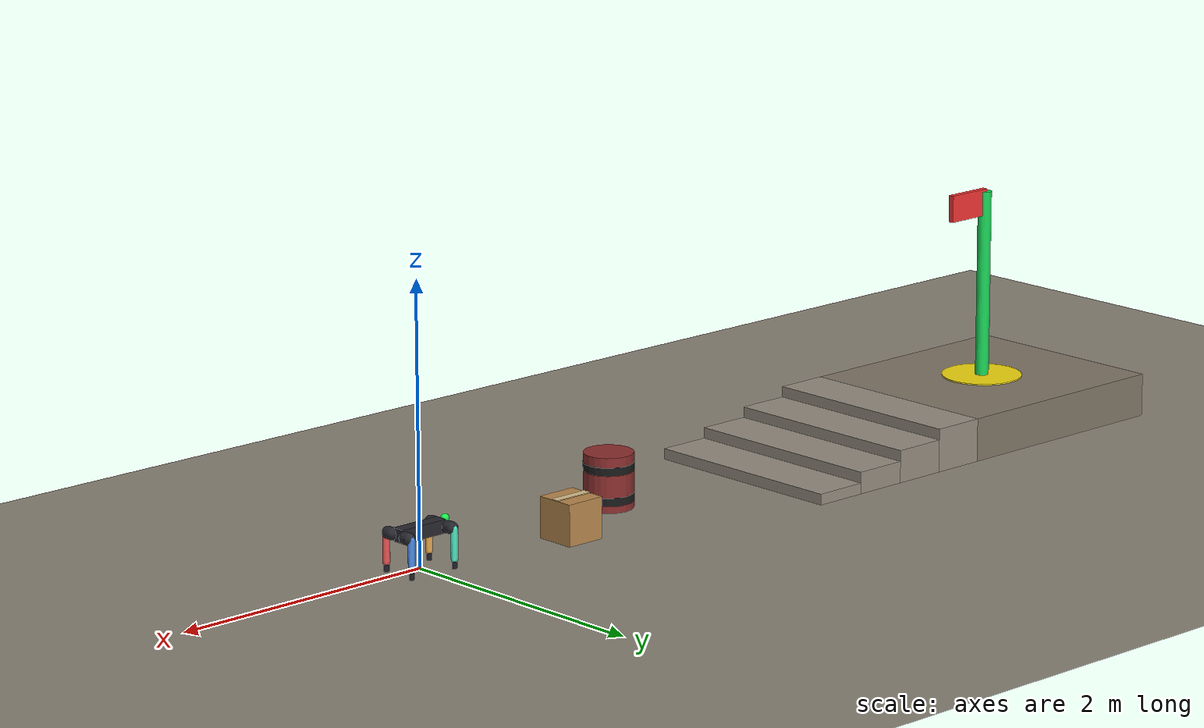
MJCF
<mujoco model="go1_stairs_navigation">

  <compiler angle="radian" autolimits="true"/>
  <option gravity="0 0 -9.81" timestep="0.002" iterations="50" tolerance="1e-10"
          cone="elliptic" impratio="100"/>

  <default>
    <joint damping="2.0" frictionloss="0.2" armature="0.01"/>
    <geom contype="1" conaffinity="1" condim="3"
          friction="0.6 0.02 0.001" solref="0.005 1" solimp="0.98 0.99 0.001"/>
    <position kp="300" ctrlrange="-3.14 3.14" forcelimited="true" forcerange="-33.5 33.5"/>
    <default class="hip_joint">
      <joint damping="1.0" frictionloss="0.2" armature="0.01"/>
    </default>
    <default class="foot">
      <geom condim="6" friction="0.8 0.02 0.01"
            solimp="0.015 1 0.023" solref="0.005 1"/>
    </default>
  </default>

  <asset>
    <texture name="sky" type="skybox" builtin="gradient"
             rgb1="0.45 0.60 0.85" rgb2="0.75 0.85 0.95"
             width="512" height="512" mark="random" markrgb="1 1 1"
             random="0.01"/>
    <texture name="ground_tex" type="2d" builtin="flat"
             rgb1="0.72 0.70 0.66" rgb2="0.68 0.66 0.62"
             width="512" height="512"/>
    <material name="ground_mat" texture="ground_tex" texrepeat="12 12"
              texuniform="true" reflectance="0.02" rgba="0.75 0.73 0.70 1"/>

    <material name="cardboard"  rgba="0.72 0.53 0.30 1" reflectance="0.02"/>
    <material name="barrel"     rgba="0.55 0.18 0.18 1" reflectance="0.20"/>
    <material name="step_mat"   rgba="0.58 0.55 0.50 1" reflectance="0.05"/>
    <material name="deck_mat"   rgba="0.50 0.46 0.40 1" reflectance="0.04"/>
    <material name="goal_pad"   rgba="0.95 0.85 0.05 1" reflectance="0.30"
              emission="0.25"/>
    <material name="beacon"     rgba="0.10 0.85 0.35 1" reflectance="0.10"
              emission="0.20"/>
    <material name="flag"       rgba="0.95 0.20 0.20 1" reflectance="0.10"/>
    <material name="body_mat"   rgba="0.15 0.15 0.18 1" reflectance="0.05"/>
    <material name="leg_mat"    rgba="0.12 0.12 0.15 1" reflectance="0.03"/>
  </asset>

  <worldbody>
    <!-- Lighting -->
    <light name="sun" pos="3 3 12" dir="-0.3 -0.2 -1" diffuse="1.2 1.15 1.0"
           specular="0.5 0.5 0.4" castshadow="true"/>
    <light name="ambient" pos="0 0 10" dir="0 0 -1" diffuse="0.35 0.38 0.45"
           specular="0 0 0" castshadow="false"/>
    <light name="fill"   pos="-5 -3 6" dir="0.3 0.2 -1" diffuse="0.25 0.25 0.30"
           castshadow="false"/>

    <!-- Ground plane -->
    <geom name="floor" type="plane" size="20 20 0.1" material="ground_mat"
          condim="6" friction="0.8 0.02 0.01"/>

    <!-- ══ Obstacle 1 — cardboard box, slightly left of centerline ══ -->
    <body name="obstacle_box" pos="-1.2 0.18 0.15">
      <geom type="box" size="0.15 0.15 0.15" material="cardboard"
            mass="5.0" friction="0.7 0.02 0.001"/>
      <geom type="box" size="0.151 0.03 0.003" pos="0 0 0.153"
            rgba="0.85 0.75 0.55 1" contype="0" conaffinity="0"/>
    </body>

    <!-- ══ Obstacle 2 — barrel, slightly right of centerline ══ -->
    <body name="obstacle_barrel" pos="-1.9 -0.20 0.20">
      <geom type="cylinder" size="0.18 0.20" material="barrel"
            mass="12.0" friction="0.7 0.02 0.001"/>
      <geom type="cylinder" size="0.181 0.03" pos="0 0 0.10"
            rgba="0.10 0.10 0.10 1" contype="0" conaffinity="0"/>
      <geom type="cylinder" size="0.181 0.03" pos="0 0 -0.12"
            rgba="0.10 0.10 0.10 1" contype="0" conaffinity="0"/>
    </body>

    <!-- ══ Stairs — 4 steps, 0.40m deep × 0.08m rise ════════════════ -->
    <!-- Each step is a static box. Cumulative rise: 0.08, 0.16, 0.24, 0.32 -->
    <body name="step_1" pos="-3.2 0 0.04">
      <geom type="box" size="0.20 0.80 0.04" material="step_mat"
            friction="0.9 0.02 0.001"/>
    </body>
    <body name="step_2" pos="-3.6 0 0.08">
      <geom type="box" size="0.20 0.80 0.08" material="step_mat"
            friction="0.9 0.02 0.001"/>
    </body>
    <body name="step_3" pos="-4.0 0 0.12">
      <geom type="box" size="0.20 0.80 0.12" material="step_mat"
            friction="0.9 0.02 0.001"/>
    </body>
    <body name="step_4" pos="-4.4 0 0.16">
      <geom type="box" size="0.20 0.80 0.16" material="step_mat"
            friction="0.9 0.02 0.001"/>
    </body>

    <!-- ══ Top deck — extends from -4.6 to -6.4, 32cm above ground ══ -->
    <body name="top_deck" pos="-5.5 0 0.16">
      <geom type="box" size="0.90 0.80 0.16" material="deck_mat"
            friction="0.9 0.02 0.001"/>
    </body>

    <!-- ══ Goal beacon at the top — pad + tall column + flag ════════ -->
    <!-- The yellow pad sits flush on the deck so the robot's camera can see it -->
    <geom name="goal_pad_disc" type="cylinder" size="0.30 0.005"
          pos="-5.5 0 0.328" material="goal_pad"
          contype="0" conaffinity="0"/>
    <!-- 1.4m tall green column rising from the deck — strong visual landmark -->
    <geom name="goal_beacon" type="cylinder" size="0.05 0.70"
          pos="-5.5 0 1.03" material="beacon"
          contype="0" conaffinity="0"/>
    <!-- Red flag on top of the beacon -->
    <geom name="goal_flag" type="box" size="0.18 0.02 0.10"
          pos="-5.32 0 1.65" material="flag"
          contype="0" conaffinity="0"/>

    <!-- ══ Robot ════════════════════════════════════════════════════ -->
    <body name="trunk" pos="0 0 0.27">
      <freejoint name="root"/>
      <geom name="trunk" type="box" size="0.1881 0.0475 0.048"
            mass="9.041" material="body_mat"/>
      <site name="imu" pos="0 0 0" size="0.005"/>
      <geom name="head_marker" type="sphere" size="0.03" pos="-0.22 0 0.04"
            rgba="0.1 0.95 0.3 1" contype="0" conaffinity="0" mass="0.001"/>

      <!-- Forward-facing camera (head, looks toward -x) — used by VLA -->
      <camera name="forward" pos="-0.22 0 0.06" euler="1.5708 -1.5708 0"
              fovy="70"/>

      <!-- FL leg -->
      <body name="FL_hip" pos="0.1881 0.0472 0">
        <joint name="FL_hip_joint" type="hinge" axis="1 0 0"
               range="-0.863 0.863" class="hip_joint"/>
        <geom type="capsule" size="0.044 0.020" pos="0 0.040 0"
              euler="1.5708 0 0" mass="0.591" material="body_mat"/>
        <body name="FL_thigh" pos="0 0.0838 0">
          <joint name="FL_thigh_joint" type="hinge" axis="0 -1 0"
                 range="-0.686 4.501"/>
          <geom type="capsule" size="0.025" fromto="0 0 0 0 0 -0.213"
                mass="0.921" material="leg_mat" rgba="0.30 0.55 0.90 1"/>
          <body name="FL_calf" pos="0 0 -0.213">
            <joint name="FL_calf_joint" type="hinge" axis="0 -1 0"
                   range="-2.818 -0.888"/>
            <geom type="capsule" size="0.019" fromto="0 0 0 0 0 -0.213"
                  mass="0.135" material="leg_mat"/>
            <body name="FL_foot" pos="0 0 -0.213">
              <geom name="FL_foot_geom" type="sphere" size="0.0165"
                    mass="0.06" rgba="0.30 0.55 0.90 1" class="foot"/>
            </body>
          </body>
        </body>
      </body>

      <!-- FR leg -->
      <body name="FR_hip" pos="0.1881 -0.0472 0">
        <joint name="FR_hip_joint" type="hinge" axis="-1 0 0"
               range="-0.863 0.863" class="hip_joint"/>
        <geom type="capsule" size="0.044 0.020" pos="0 -0.040 0"
              euler="1.5708 0 0" mass="0.591" material="body_mat"/>
        <body name="FR_thigh" pos="0 -0.0838 0">
          <joint name="FR_thigh_joint" type="hinge" axis="0 -1 0"
                 range="-0.686 4.501"/>
          <geom type="capsule" size="0.025" fromto="0 0 0 0 0 -0.213"
                mass="0.921" material="leg_mat" rgba="0.90 0.33 0.33 1"/>
          <body name="FR_calf" pos="0 0 -0.213">
            <joint name="FR_calf_joint" type="hinge" axis="0 -1 0"
                   range="-2.818 -0.888"/>
            <geom type="capsule" size="0.019" fromto="0 0 0 0 0 -0.213"
                  mass="0.135" material="leg_mat"/>
            <body name="FR_foot" pos="0 0 -0.213">
              <geom name="FR_foot_geom" type="sphere" size="0.0165"
                    mass="0.06" rgba="0.90 0.33 0.33 1" class="foot"/>
            </body>
          </body>
        </body>
      </body>

      <!-- RL leg -->
      <body name="RL_hip" pos="-0.1881 0.0472 0">
        <joint name="RL_hip_joint" type="hinge" axis="1 0 0"
               range="-0.863 0.863" class="hip_joint"/>
        <geom type="capsule" size="0.044 0.020" pos="0 0.040 0"
              euler="1.5708 0 0" mass="0.591" material="body_mat"/>
        <body name="RL_thigh" pos="0 0.0838 0">
          <joint name="RL_thigh_joint" type="hinge" axis="0 -1 0"
                 range="-0.686 4.501"/>
          <geom type="capsule" size="0.025" fromto="0 0 0 0 0 -0.213"
                mass="0.921" material="leg_mat" rgba="0.30 0.90 0.75 1"/>
          <body name="RL_calf" pos="0 0 -0.213">
            <joint name="RL_calf_joint" type="hinge" axis="0 -1 0"
                   range="-2.818 -0.888"/>
            <geom type="capsule" size="0.019" fromto="0 0 0 0 0 -0.213"
                  mass="0.135" material="leg_mat"/>
            <body name="RL_foot" pos="0 0 -0.213">
              <geom name="RL_foot_geom" type="sphere" size="0.0165"
                    mass="0.06" rgba="0.30 0.90 0.75 1" class="foot"/>
            </body>
          </body>
        </body>
      </body>

      <!-- RR leg -->
      <body name="RR_hip" pos="-0.1881 -0.0472 0">
        <joint name="RR_hip_joint" type="hinge" axis="-1 0 0"
               range="-0.863 0.863" class="hip_joint"/>
        <geom type="capsule" size="0.044 0.020" pos="0 -0.040 0"
              euler="1.5708 0 0" mass="0.591" material="body_mat"/>
        <body name="RR_thigh" pos="0 -0.0838 0">
          <joint name="RR_thigh_joint" type="hinge" axis="0 -1 0"
                 range="-0.686 4.501"/>
          <geom type="capsule" size="0.025" fromto="0 0 0 0 0 -0.213"
                mass="0.921" material="leg_mat" rgba="0.90 0.65 0.30 1"/>
          <body name="RR_calf" pos="0 0 -0.213">
            <joint name="RR_calf_joint" type="hinge" axis="0 -1 0"
                   range="-2.818 -0.888"/>
            <geom type="capsule" size="0.019" fromto="0 0 0 0 0 -0.213"
                  mass="0.135" material="leg_mat"/>
            <body name="RR_foot" pos="0 0 -0.213">
              <geom name="RR_foot_geom" type="sphere" size="0.0165"
                    mass="0.06" rgba="0.90 0.65 0.30 1" class="foot"/>
            </body>
          </body>
        </body>
      </body>
    </body>
  </worldbody>

  <actuator>
    <position name="FL_hip"   joint="FL_hip_joint"   ctrlrange="-0.80 0.80"   forcelimited="true" forcerange="-23.7 23.7"/>
    <position name="FL_thigh" joint="FL_thigh_joint" ctrlrange="-0.50 2.50"   forcelimited="true" forcerange="-23.7 23.7"/>
    <position name="FL_calf"  joint="FL_calf_joint"  ctrlrange="-2.75 -0.60"  forcelimited="true" forcerange="-35.55 35.55"/>
    <position name="FR_hip"   joint="FR_hip_joint"   ctrlrange="-0.80 0.80"   forcelimited="true" forcerange="-23.7 23.7"/>
    <position name="FR_thigh" joint="FR_thigh_joint" ctrlrange="-0.50 2.50"   forcelimited="true" forcerange="-23.7 23.7"/>
    <position name="FR_calf"  joint="FR_calf_joint"  ctrlrange="-2.75 -0.60"  forcelimited="true" forcerange="-35.55 35.55"/>
    <position name="RL_hip"   joint="RL_hip_joint"   ctrlrange="-0.80 0.80"   forcelimited="true" forcerange="-23.7 23.7"/>
    <position name="RL_thigh" joint="RL_thigh_joint" ctrlrange="-0.50 2.50"   forcelimited="true" forcerange="-23.7 23.7"/>
    <position name="RL_calf"  joint="RL_calf_joint"  ctrlrange="-2.75 -0.60"  forcelimited="true" forcerange="-35.55 35.55"/>
    <position name="RR_hip"   joint="RR_hip_joint"   ctrlrange="-0.80 0.80"   forcelimited="true" forcerange="-23.7 23.7"/>
    <position name="RR_thigh" joint="RR_thigh_joint" ctrlrange="-0.50 2.50"   forcelimited="true" forcerange="-23.7 23.7"/>
    <position name="RR_calf"  joint="RR_calf_joint"  ctrlrange="-2.75 -0.60"  forcelimited="true" forcerange="-35.55 35.55"/>
  </actuator>

  <keyframe>
    <key name="home" qpos="0 0 0.27 1 0 0 0
                           0 0.9 -1.8  0 0.9 -1.8
                           0 0.9 -1.8  0 0.9 -1.8"/>
  </keyframe>
</mujoco>
